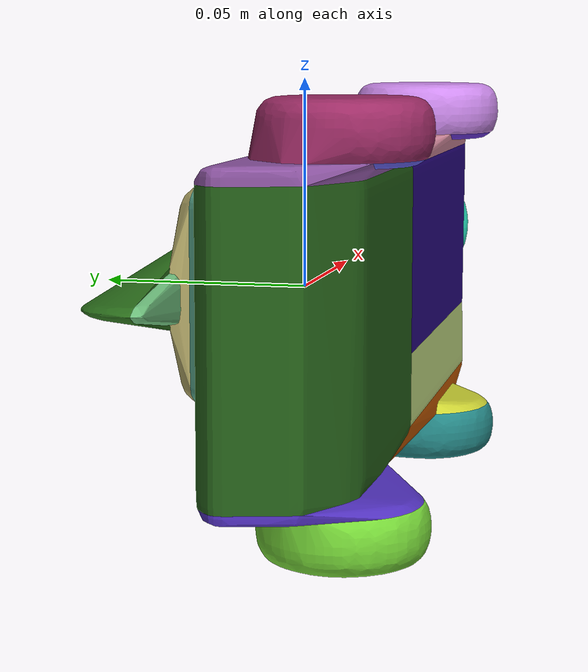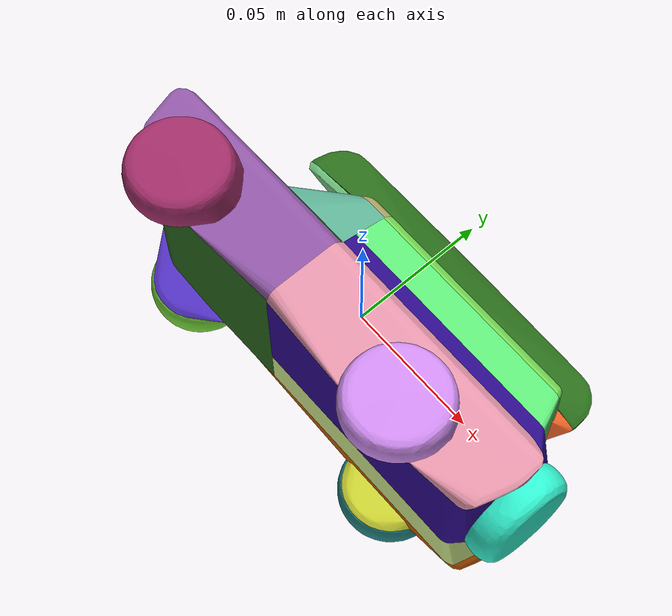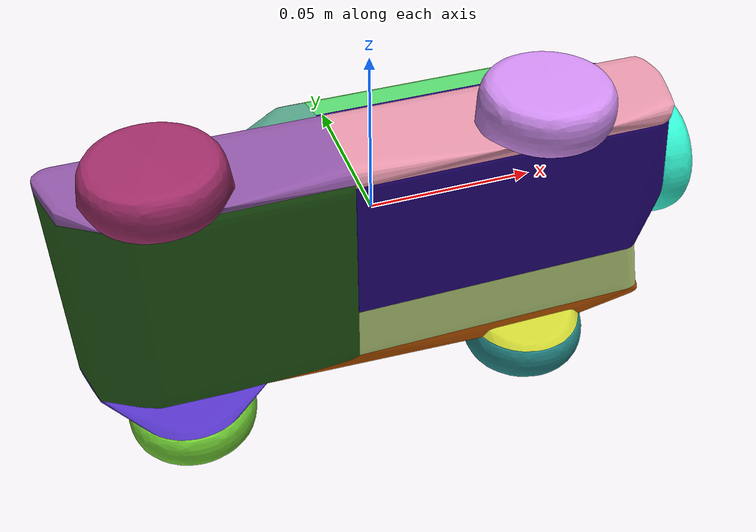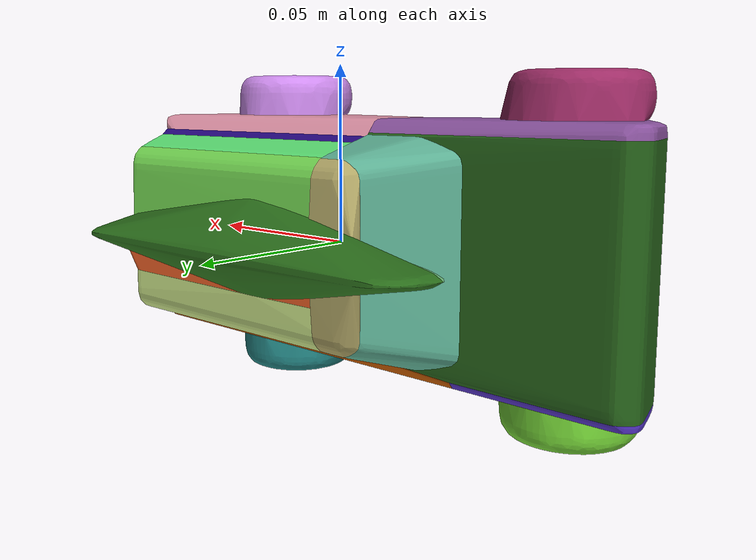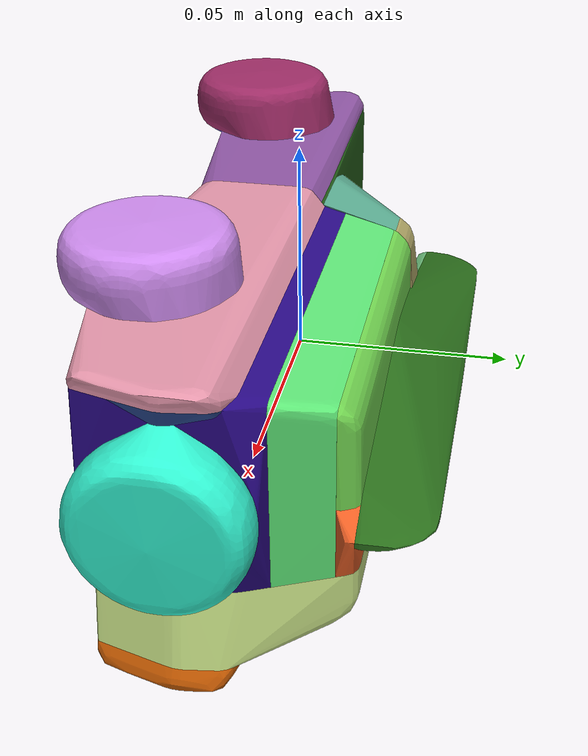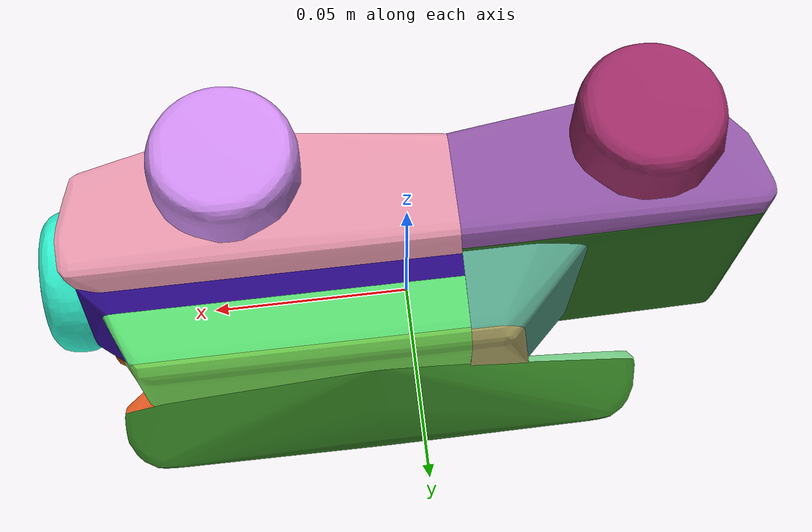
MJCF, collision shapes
<mujoco model="_0831080917_texture">
  <default>
    <default class="visual">
      <geom group="1" type="mesh" contype="0" conaffinity="0"/>
    </default>
    <default class="collision">
      <geom group="0" type="mesh"/>
    </default>
  </default>
  <asset>
    <texture type="2d" name="_0831080917_texture" file="_0831080917_texture.png"/>
    <material name="Material" texture="_0831080917_texture" specular="0.5" shininess="0.25"/>
    <mesh name="_0831080917_texture" file="_0831080917_texture.obj" scale="0.09 0.09 0.09"/>
    <mesh name="_0831080917_texture_collision_0" file="_0831080917_texture_collision_0.obj" scale="0.09 0.09 0.09"/>
    <mesh name="_0831080917_texture_collision_1" file="_0831080917_texture_collision_1.obj" scale="0.09 0.09 0.09"/>
    <mesh name="_0831080917_texture_collision_2" file="_0831080917_texture_collision_2.obj" scale="0.09 0.09 0.09"/>
    <mesh name="_0831080917_texture_collision_3" file="_0831080917_texture_collision_3.obj" scale="0.09 0.09 0.09"/>
    <mesh name="_0831080917_texture_collision_4" file="_0831080917_texture_collision_4.obj" scale="0.09 0.09 0.09"/>
    <mesh name="_0831080917_texture_collision_5" file="_0831080917_texture_collision_5.obj" scale="0.09 0.09 0.09"/>
    <mesh name="_0831080917_texture_collision_6" file="_0831080917_texture_collision_6.obj" scale="0.09 0.09 0.09"/>
    <mesh name="_0831080917_texture_collision_7" file="_0831080917_texture_collision_7.obj" scale="0.09 0.09 0.09"/>
    <mesh name="_0831080917_texture_collision_8" file="_0831080917_texture_collision_8.obj" scale="0.09 0.09 0.09"/>
    <mesh name="_0831080917_texture_collision_9" file="_0831080917_texture_collision_9.obj" scale="0.09 0.09 0.09"/>
    <mesh name="_0831080917_texture_collision_10" file="_0831080917_texture_collision_10.obj" scale="0.09 0.09 0.09"/>
    <mesh name="_0831080917_texture_collision_11" file="_0831080917_texture_collision_11.obj" scale="0.09 0.09 0.09"/>
    <mesh name="_0831080917_texture_collision_12" file="_0831080917_texture_collision_12.obj" scale="0.09 0.09 0.09"/>
    <mesh name="_0831080917_texture_collision_13" file="_0831080917_texture_collision_13.obj" scale="0.09 0.09 0.09"/>
    <mesh name="_0831080917_texture_collision_14" file="_0831080917_texture_collision_14.obj" scale="0.09 0.09 0.09"/>
    <mesh name="_0831080917_texture_collision_15" file="_0831080917_texture_collision_15.obj" scale="0.09 0.09 0.09"/>
    <mesh name="_0831080917_texture_collision_16" file="_0831080917_texture_collision_16.obj" scale="0.09 0.09 0.09"/>
    <mesh name="_0831080917_texture_collision_17" file="_0831080917_texture_collision_17.obj" scale="0.09 0.09 0.09"/>
    <mesh name="_0831080917_texture_collision_18" file="_0831080917_texture_collision_18.obj" scale="0.09 0.09 0.09"/>
    <mesh name="_0831080917_texture_collision_19" file="_0831080917_texture_collision_19.obj" scale="0.09 0.09 0.09"/>
    <mesh name="_0831080917_texture_collision_20" file="_0831080917_texture_collision_20.obj" scale="0.09 0.09 0.09"/>
    <mesh name="_0831080917_texture_collision_21" file="_0831080917_texture_collision_21.obj" scale="0.09 0.09 0.09"/>
    <mesh name="_0831080917_texture_collision_22" file="_0831080917_texture_collision_22.obj" scale="0.09 0.09 0.09"/>
  </asset>
  <worldbody>
  <body>
    <body name="object">
      <geom material="Material" mesh="_0831080917_texture" class="visual"/>
      <geom mesh="_0831080917_texture_collision_0" rgba="0.36261893777112353 0.6852756809928272 0.5771912848544565 0" class="collision"/>
      <geom mesh="_0831080917_texture_collision_1" rgba="0.7976631114791761 0.8985160094731357 0.5343390445390209 0" class="collision"/>
      <geom mesh="_0831080917_texture_collision_2" rgba="0.1672746572499395 0.4326182308702554 0.10591329939437477 0" class="collision"/>
      <geom mesh="_0831080917_texture_collision_3" rgba="0.14589239993153436 0.5400374106071295 0.5365328231281924 0" class="collision"/>
      <geom mesh="_0831080917_texture_collision_4" rgba="0.8094453704326239 0.5476875825568207 0.9345171508227753 0" class="collision"/>
      <geom mesh="_0831080917_texture_collision_5" rgba="0.14912453919668622 0.38455843266591405 0.10188718990213219 0" class="collision"/>
      <geom mesh="_0831080917_texture_collision_6" rgba="0.9325404383507704 0.3768184512031899 0.14701544796059263 0" class="collision"/>
      <geom mesh="_0831080917_texture_collision_7" rgba="0.4339489824920537 0.7554219203019967 0.4911841042600342 0" class="collision"/>
      <geom mesh="_0831080917_texture_collision_8" rgba="0.3867996516130833 0.19257777370616147 0.8087330453660061 0" class="collision"/>
      <geom mesh="_0831080917_texture_collision_9" rgba="0.8032985190089103 0.8277725238119392 0.2004338131579403 0" class="collision"/>
      <geom mesh="_0831080917_texture_collision_10" rgba="0.701551546123292 0.6601468162867081 0.4058576057647687 0" class="collision"/>
      <geom mesh="_0831080917_texture_collision_11" rgba="0.4700536472714839 0.849374914432386 0.22193756988485913 0" class="collision"/>
      <geom mesh="_0831080917_texture_collision_12" rgba="0.776319708972103 0.35150259708712006 0.006056314075492897 0" class="collision"/>
      <geom mesh="_0831080917_texture_collision_13" rgba="0.4562944192041871 0.8487765855381199 0.3226441529145042 0" class="collision"/>
      <geom mesh="_0831080917_texture_collision_14" rgba="0.6202725008895968 0.17286891061177 0.40254448135214027 0" class="collision"/>
      <geom mesh="_0831080917_texture_collision_15" rgba="0.8885835898759624 0.5814639198515388 0.6625060757009558 0" class="collision"/>
      <geom mesh="_0831080917_texture_collision_16" rgba="0.1647123430998938 0.03542328396472694 0.5327196305707503 0" class="collision"/>
      <geom mesh="_0831080917_texture_collision_17" rgba="0.3692356763843778 0.9040591928597158 0.4656886866549709 0" class="collision"/>
      <geom mesh="_0831080917_texture_collision_18" rgba="0.13825763220031395 0.25485001853282674 0.519237293924705 0" class="collision"/>
      <geom mesh="_0831080917_texture_collision_19" rgba="0.3653347990091519 0.35623457754632104 0.8774064194096756 0" class="collision"/>
      <geom mesh="_0831080917_texture_collision_20" rgba="0.3300971407281642 0.19896800889267996 0.7704055560753063 0" class="collision"/>
      <geom mesh="_0831080917_texture_collision_21" rgba="0.5599658012360822 0.3381460098132092 0.6454515210550864 0" class="collision"/>
      <geom mesh="_0831080917_texture_collision_22" rgba="0.19642441254327625 0.9629195264342818 0.8264801487275346 0" class="collision"/>
    </body>
        <site rgba="0 0 0 0" size="0.005" pos="0 0 -0.04" name="bottom_site" />
        <site rgba="0 0 0 0" size="0.005" pos="0 0 0.04" name="top_site" />
        <site rgba="0 0 0 0" size="0.005" pos="0.025 0.025 0" name="horizontal_radius_site" />
  </body>
  </worldbody>
</mujoco>
